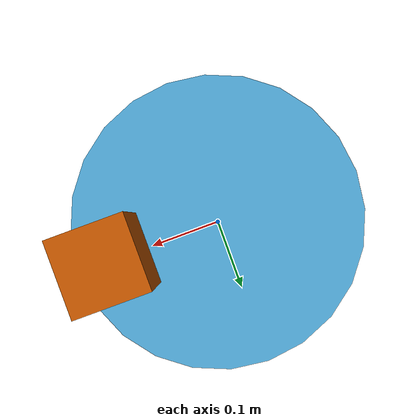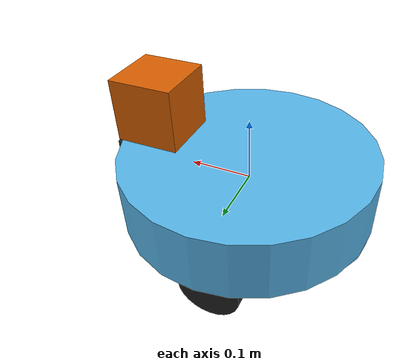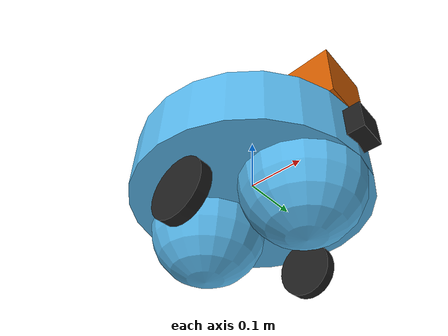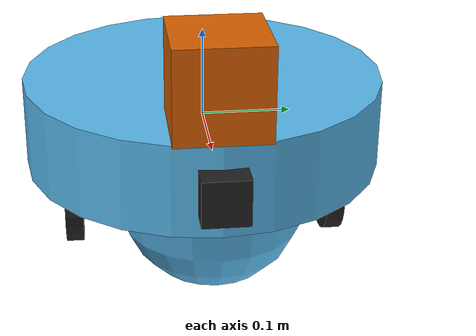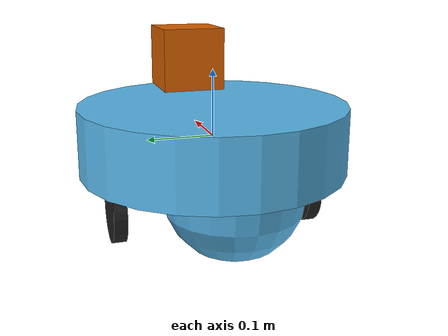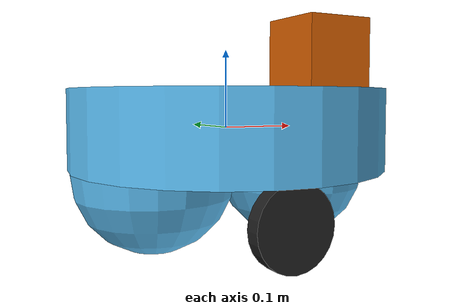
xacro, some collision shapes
<?xml version='1.0'?>

<robot name="sweeping_robot" xmlns:xacro="http://www.ros.org/wiki/xacro">
  <!-- gazebo plugin -->
  <xacro:include filename="$(find sweeping_robot)/urdf/sweeping_robot.gazebo" />

  <!-- odometry -->
  <link name="robot_footprint"></link>

  <!-- chassis -->
  <joint name="robot_footprint_joint" type="fixed">
    <origin xyz="0 0 0" rpy="0 0 0" />
    <parent link="robot_footprint"/>
    <child link="chassis" />
  </joint>

  <link name="chassis">
    <pose>0 0 0.15 0 0 0</pose>
    <inertial>
      <mass value="10.0"/>
      <origin xyz="0.0 0 0" rpy="0 0 0"/>
      <inertia
          ixx="0.1" ixy="0" ixz="0"
          iyy="0.1" iyz="0"
          izz="0.1"
      />
    </inertial>
    <collision name="chassis_collision">
      <origin xyz="0 0 0" rpy=" 0 0 0"/>
      <geometry>
        <cylinder radius="0.20" length="0.1"/>
      </geometry>
    </collision>
    <visual name="chassis_visual">
      <origin xyz="0 0 0" rpy=" 0 0 0"/>
      <geometry>
        <cylinder radius="0.20" length="0.1"/>
      </geometry>
    </visual>
    <!-- front caster -->
    <collision name='front_caster_collision'>
      <origin xyz="0.10 0 -0.05" rpy=" 0 0 0"/>
      <geometry>
        <sphere radius="0.10"/>
      </geometry>
      <surface>
        <friction>
          <ode>
            <mu>0</mu>
            <mu2>0</mu2>
            <slip1>1.0</slip1>
            <slip2>1.0</slip2>
          </ode>
        </friction>
      </surface>
    </collision>
    <visual name='front_caster_visual'>
      <origin xyz="0.10 0 -0.05" rpy=" 0 0 0"/>
      <geometry>
        <sphere radius="0.10"/>
      </geometry>
    </visual>
    <!-- back caster -->
    <collision name='back_caster_collision'>
      <origin xyz="-0.10 0 -0.05" rpy=" 0 0 0"/>
      <geometry>
        <sphere radius="0.10"/>
      </geometry>
      <surface>
        <friction>
          <ode>
            <mu>0</mu>
            <mu2>0</mu2>
            <slip1>1.0</slip1>
            <slip2>1.0</slip2>
          </ode>
        </friction>
      </surface>
    </collision>
    <visual name='back_caster_visual'>
      <origin xyz="-0.10 0 -0.05" rpy=" 0 0 0"/>
      <geometry>
        <sphere radius="0.10"/>
      </geometry>
    </visual>
  </link>

  <!-- left wheel -->
  <joint type="continuous" name="left_wheel_hinge">
    <origin xyz="+0.00 +0.15 -0.10" rpy="0 0 0"/>
    <parent link="chassis"/>
    <child link="left_wheel"/>
    <axis xyz="0 1 0" rpy="0 0 0"/>
    <limit effort="10000" velocity="1000"/>
    <dynamics damping="1.0" friction="1.0"/>
  </joint>

  <link name="left_wheel">
    <inertial>
      <mass value="1.0"/>
      <origin xyz="0.0 0 0" rpy=" 0 1.5707 1.5707"/>
      <inertia
          ixx="0.1" ixy="0" ixz="0"
          iyy="0.1" iyz="0"
          izz="0.1"
      />
    </inertial>
    <collision name="left_wheel_collision">
      <origin xyz="0 0 0" rpy=" 0 1.5707 1.5707"/>
      <geometry>
        <cylinder length="0.02" radius="0.05"/>
      </geometry>
    </collision>
    <visual name="left_wheel_visual">
      <origin xyz="0 0 0" rpy=" 0 1.5707 1.5707"/>
      <geometry>
        <cylinder length="0.02" radius="0.05"/>
      </geometry>
    </visual>
  </link>

  <!-- right wheel -->
  <joint type="continuous" name="right_wheel_hinge">
    <origin xyz="+0.00 -0.15 -0.10" rpy="0 0 0"/>
    <parent link="chassis"/>
    <child link="right_wheel"/>
    <axis xyz="0 1 0" rpy="0 0 0"/>
    <limit effort="10000" velocity="1000"/>
    <dynamics damping="1.0" friction="1.0"/>
  </joint>

  <link name="right_wheel">
    <inertial>
      <mass value="1.0"/>
      <origin xyz="0.0 0 0" rpy=" 0 1.5707 1.5707"/>
      <inertia
          ixx="0.1" ixy="0" ixz="0"
          iyy="0.1" iyz="0"
          izz="0.1"
      />
    </inertial>
    <collision name="right_wheel_collision">
      <origin xyz="0 0 0" rpy=" 0 1.5707 1.5707"/>
      <geometry>
        <cylinder length="0.02" radius="0.05"/>
      </geometry>
    </collision>
    <visual name="right_wheel_visual">
      <origin xyz="0 0 0" rpy=" 0 1.5707 1.5707"/>
      <geometry>
        <cylinder length="0.02" radius="0.05"/>
      </geometry>
    </visual>
  </link>

  <!-- RGB-D camera -->
  <joint type="fixed" name="rgbd_camera_joint">
    <origin xyz="0.20 0.0 0.0" rpy="0 0 0"/>
    <parent link="chassis"/>
    <child link="rgbd_camera"/>
  </joint>

  <link name="rgbd_camera">
    <inertial>
      <mass value="0.1"/>
      <origin xyz="0 0 0" rpy=" 0 0 0"/>
      <inertia
          ixx="1e-6" ixy="0" ixz="0"
          iyy="1e-6" iyz="0"
          izz="1e-6"
      />
    </inertial>
    <collision name="rgbd_camera_collision">
      <origin xyz="0 0 0" rpy=" 0 0 0"/>
      <geometry>
        <box size="0.05 0.05 0.05"/>
      </geometry>
    </collision>
    <visual name="rgbd_camera_visual">
      <origin xyz="0 0 0" rpy=" 0 0 0"/>
      <geometry>
        <box size="0.05 0.05 0.05"/>
      </geometry>
    </visual>
  </link>

  <!-- laser scanner -->
  <joint type="fixed" name="hokuyo_joint">
    <origin xyz="0.15 0 0.10" rpy="0 0 0"/>
    <parent link="chassis"/>
    <child link="hokuyo"/>
  </joint>

  <link name="hokuyo">
    <inertial>
      <mass value="0.1"/>
      <origin xyz="0 0 0" rpy="0 0 0"/>
      <inertia
          ixx="1e-6" ixy="0" ixz="0"
          iyy="1e-6" iyz="0"
          izz="1e-6"
      />
    </inertial>
    <collision name="hokuyo_collision">
      <origin xyz="0 0 0" rpy="0 0 0"/>
      <geometry>
        <box size="0.1 0.1 0.1"/>
      </geometry>
    </collision>
    <visual name="hokuyo_visual">
      <origin xyz="0 0 0" rpy="0 0 0"/>
      <geometry>
        <mesh filename="package://sweeping_robot/meshes/hokuyo.dae"/>
      </geometry>
    </visual>
  </link>
</robot>
